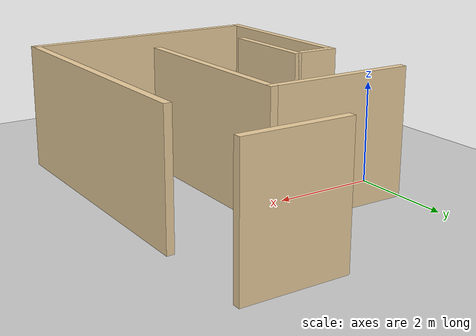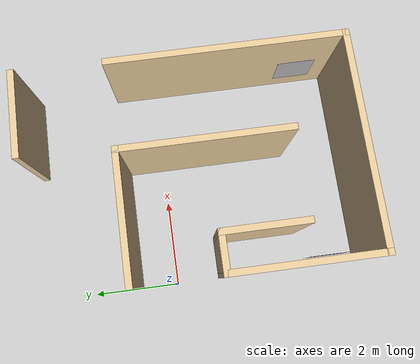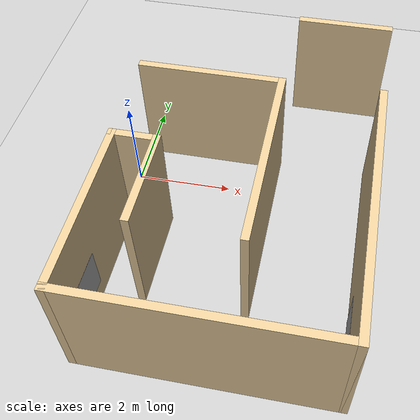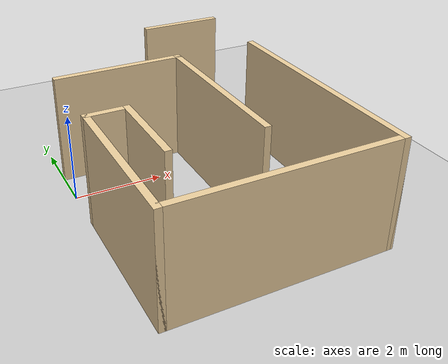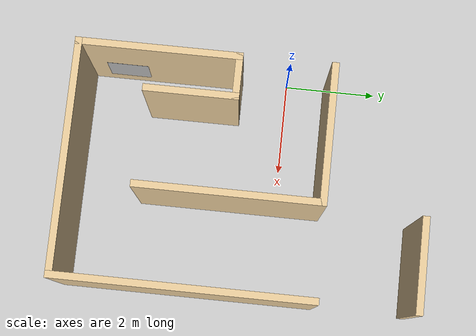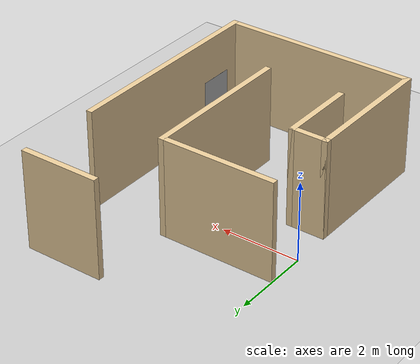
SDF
<?xml version="1.0" ?>
<sdf version="1.4">
  <world name="default">

    <include>
      <uri>model://sun</uri>
    </include>

    <include>
      <uri>model://ground_plane</uri>
    </include>

    <include>
      <uri>model://maze</uri>
      <pose>2.5 -1.75 0 0 0 0</pose>
    </include>

    <include>
      <uri>model://wall</uri>
      <pose>4 3 0 0 0 0</pose>
    </include>

    <include>
      <uri>model://landmark_red</uri>
      <pose>0.2 -3.5 0.986498 0 0 3.14</pose>
    </include>

    <include>
      <uri>model://landmark_green</uri>
      <pose>4.8 -3.5 0.986498 0 0 0</pose>
    </include>

  </world>
</sdf>

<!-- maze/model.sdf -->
<sdf version='1.7'>
  <model name='test_01'>
    <pose>2.475 -1.65039 0 0 -0 0</pose>
    <link name='Wall_0'>
      <collision name='Wall_0_Collision'>
        <geometry>
          <box>
            <size>1 0.15 2.5</size>
          </box>
        </geometry>
        <pose>0 0 1.25 0 -0 0</pose>
      </collision>
      <visual name='Wall_0_Visual'>
        <pose>0 0 1.25 0 -0 0</pose>
        <geometry>
          <box>
            <size>1 0.15 2.5</size>
          </box>
        </geometry>
        <material>
          <script>
            <uri>file://media/materials/scripts/gazebo.material</uri>
            <name>Gazebo/Grey</name>
          </script>
          <ambient>0.921569 0.807843 0.615686 1</ambient>
        </material>
        <meta>
          <layer>0</layer>
        </meta>
      </visual>
      <pose>-2 0.675 0 0 -0 0</pose>
    </link>
    <link name='Wall_10'>
      <collision name='Wall_10_Collision'>
        <geometry>
          <box>
            <size>3.5 0.15 2.5</size>
          </box>
        </geometry>
        <pose>0 0 1.25 0 -0 0</pose>
      </collision>
      <visual name='Wall_10_Visual'>
        <pose>0 0 1.25 0 -0 0</pose>
        <geometry>
          <box>
            <size>3.5 0.15 2.5</size>
          </box>
        </geometry>
        <material>
          <script>
            <uri>file://media/materials/scripts/gazebo.material</uri>
            <name>Gazebo/Grey</name>
          </script>
          <ambient>0.921569 0.807843 0.615686 1</ambient>
        </material>
        <meta>
          <layer>0</layer>
        </meta>
      </visual>
      <pose>-2.425 -1 0 0 -0 -1.5708</pose>
    </link>
    <link name='Wall_12'>
      <collision name='Wall_12_Collision'>
        <geometry>
          <box>
            <size>5 0.15 2.5</size>
          </box>
        </geometry>
        <pose>0 0 1.25 0 -0 0</pose>
      </collision>
      <visual name='Wall_12_Visual'>
        <pose>0 0 1.25 0 -0 0</pose>
        <geometry>
          <box>
            <size>5 0.15 2.5</size>
          </box>
        </geometry>
        <material>
          <script>
            <uri>file://media/materials/scripts/gazebo.material</uri>
            <name>Gazebo/Grey</name>
          </script>
          <ambient>0.921569 0.807843 0.615686 1</ambient>
        </material>
        <meta>
          <layer>0</layer>
        </meta>
      </visual>
      <pose>-0 -2.675 0 0 -0 0</pose>
    </link>
    <link name='Wall_14'>
      <collision name='Wall_14_Collision'>
        <geometry>
          <box>
            <size>5.5 0.15 2.5</size>
          </box>
        </geometry>
        <pose>0 0 1.25 0 -0 0</pose>
      </collision>
      <visual name='Wall_14_Visual'>
        <pose>0 0 1.25 0 -0 0</pose>
        <geometry>
          <box>
            <size>5.5 0.15 2.5</size>
          </box>
        </geometry>
        <material>
          <script>
            <uri>file://media/materials/scripts/gazebo.material</uri>
            <name>Gazebo/Grey</name>
          </script>
          <ambient>0.921569 0.807843 0.615686 1</ambient>
        </material>
        <meta>
          <layer>0</layer>
        </meta>
      </visual>
      <pose>2.425 0 0 0 -0 1.5708</pose>
    </link>
    <link name='Wall_4'>
      <collision name='Wall_4_Collision'>
        <geometry>
          <box>
            <size>3 0.15 2.5</size>
          </box>
        </geometry>
        <pose>0 0 1.25 0 -0 0</pose>
      </collision>
      <visual name='Wall_4_Visual'>
        <pose>0 0 1.25 0 -0 0</pose>
        <geometry>
          <box>
            <size>3 0.15 2.5</size>
          </box>
        </geometry>
        <material>
          <script>
            <uri>file://media/materials/scripts/gazebo.material</uri>
            <name>Gazebo/Grey</name>
          </script>
          <ambient>0.921569 0.807843 0.615686 1</ambient>
        </material>
        <meta>
          <layer>0</layer>
        </meta>
      </visual>
      <pose>-0.993235 2.66264 0 0 -0 0</pose>
    </link>
    <link name='Wall_6'>
      <collision name='Wall_6_Collision'>
        <geometry>
          <box>
            <size>4 0.15 2.5</size>
          </box>
        </geometry>
        <pose>0 0 1.25 0 -0 0</pose>
      </collision>
      <visual name='Wall_6_Visual'>
        <pose>0 0 1.25 0 -0 0</pose>
        <geometry>
          <box>
            <size>4 0.15 2.5</size>
          </box>
        </geometry>
        <material>
          <script>
            <uri>file://media/materials/scripts/gazebo.material</uri>
            <name>Gazebo/Grey</name>
          </script>
          <ambient>0.921569 0.807843 0.615686 1</ambient>
        </material>
        <meta>
          <layer>0</layer>
        </meta>
      </visual>
      <pose>0.431765 0.737645 0 0 -0 -1.5708</pose>
    </link>
    <link name='Wall_8'>
      <collision name='Wall_8_Collision'>
        <geometry>
          <box>
            <size>2 0.15 2.5</size>
          </box>
        </geometry>
        <pose>0 0 1.25 0 -0 0</pose>
      </collision>
      <visual name='Wall_8_Visual'>
        <pose>0 0 1.25 0 -0 0</pose>
        <geometry>
          <box>
            <size>2 0.15 2.5</size>
          </box>
        </geometry>
        <material>
          <script>
            <uri>file://media/materials/scripts/gazebo.material</uri>
            <name>Gazebo/Grey</name>
          </script>
          <ambient>0.921569 0.807843 0.615686 1</ambient>
        </material>
        <meta>
          <layer>0</layer>
        </meta>
      </visual>
      <pose>-1.575 -0.25 0 0 -0 -1.5708</pose>
    </link>
    <static>1</static>
  </model>
</sdf>

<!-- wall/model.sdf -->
<sdf version='1.6'>
  <model name='wall'>
    <pose frame=''>3.965 2.99 0 0 -0 0</pose>
    <link name='Wall_0'>
      <collision name='Wall_0_Collision'>
        <geometry>
          <box>
            <size>2 0.15 2.5</size>
          </box>
        </geometry>
        <pose frame=''>0 0 1.25 0 -0 0</pose>
      </collision>
      <visual name='Wall_0_Visual'>
        <pose frame=''>0 0 1.25 0 -0 0</pose>
        <geometry>
          <box>
            <size>2 0.15 2.5</size>
          </box>
        </geometry>
        <material>
          <script>
            <uri>file://media/materials/scripts/gazebo.material</uri>
            <name>Gazebo/Grey</name>
          </script>
          <ambient>0.921569 0.807843 0.615686 1</ambient>
        </material>
        <meta>
          <layer>0</layer>
        </meta>
      </visual>
      <pose frame=''>-0 0 0 0 -0 0</pose>
    </link>
    <static>1</static>
  </model>
</sdf>

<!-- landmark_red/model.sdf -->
<sdf version="1.6">
  <model name="landmark_red">
    <static>true</static>
    <link name="link">
      <pose>0 0 0 0 0 0</pose>
      <collision name="collision">
        <geometry>
          <box>
            <size>1e-5 0.9 0.9</size>
          </box>
        </geometry>
      </collision>
      <visual name="visual">
         <geometry>
           <box>
            <size>1e-5 0.9 0.9</size>
          </box>
         </geometry>
        <material>
          <script>
            <uri>model://landmark_red/materials/scripts</uri>
	          <uri>model://landmark_red/materials/textures</uri>
            <name>cube/qr</name>
          </script>
        </material>
       </visual>
    </link>
    <link name="linkblack">
      <pose>1e-3 0 0 0 0 0</pose>
      <collision name="collisionblack">
        <geometry>
          <box>
            <size>1e-3 0.9 0.9</size>
          </box>
        </geometry>
      </collision>
      <visual name="visualblack">
         <geometry>
           <box>
            <size>1e-3 0.9 0.9</size>
          </box>
         </geometry>
        <material>
          <script>
            <uri>file://media/materials/scripts/gazebo.material</uri>
            <name>Gazebo/Black</name>
          </script>
        </material>
       </visual>
    </link>
  </model>
</sdf>

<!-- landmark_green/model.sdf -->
<sdf version="1.6">
  <model name="landmark_green">
    <static>true</static>
    <link name="link">
      <pose>0 0 0 0 0 0</pose>
      <collision name="collision">
        <geometry>
          <box>
            <size>1e-5 0.9 0.9</size>
          </box>
        </geometry>
      </collision>
      <visual name="visual">
         <geometry>
           <box>
            <size>1e-5 0.9 0.9</size>
          </box>
         </geometry>
        <material>
          <script>
            <uri>model://landmark_green/materials/scripts</uri>
	          <uri>model://landmark_green/materials/textures</uri>
            <name>cube2/qr</name>
          </script>
        </material>
       </visual>
    </link>
    <link name="linkblack">
      <pose>1e-3 0 0 0 0 0</pose>
      <collision name="collisionblack">
        <geometry>
          <box>
            <size>1e-3 0.9 0.9</size>
          </box>
        </geometry>
      </collision>
      <visual name="visualblack">
         <geometry>
           <box>
            <size>1e-3 0.9 0.9</size>
          </box>
         </geometry>
        <material>
          <script>
            <uri>file://media/materials/scripts/gazebo.material</uri>
            <name>Gazebo/Black</name>
          </script>
        </material>
       </visual>
    </link>
  </model>
</sdf>
